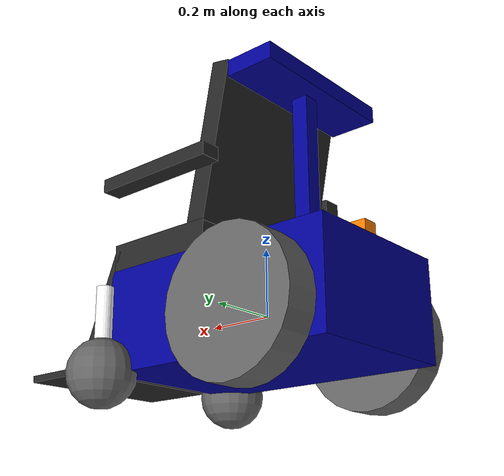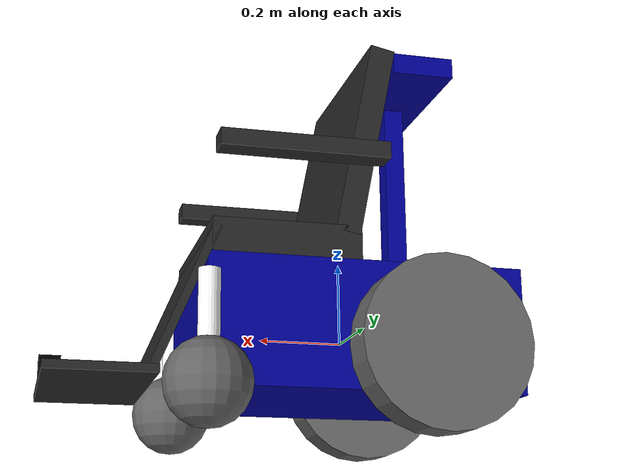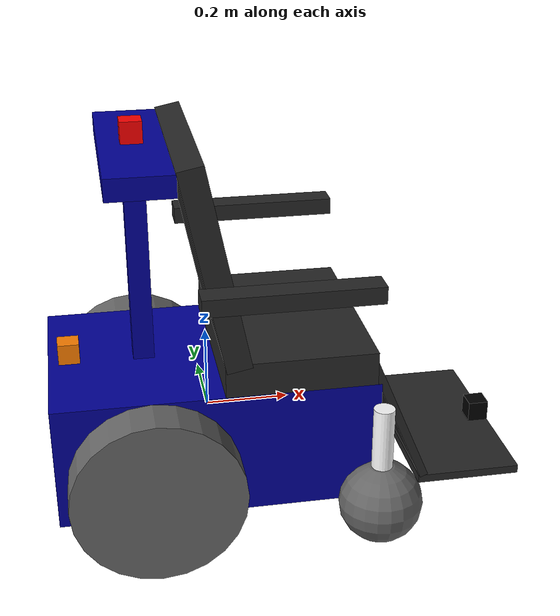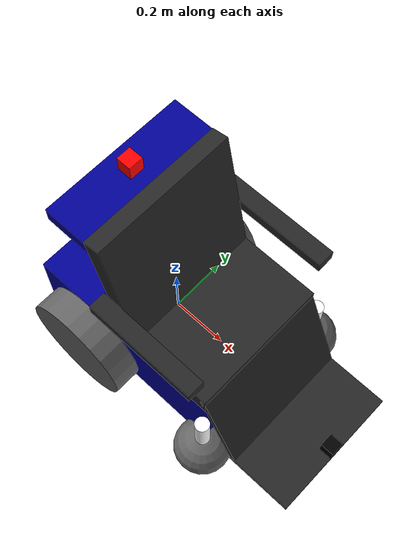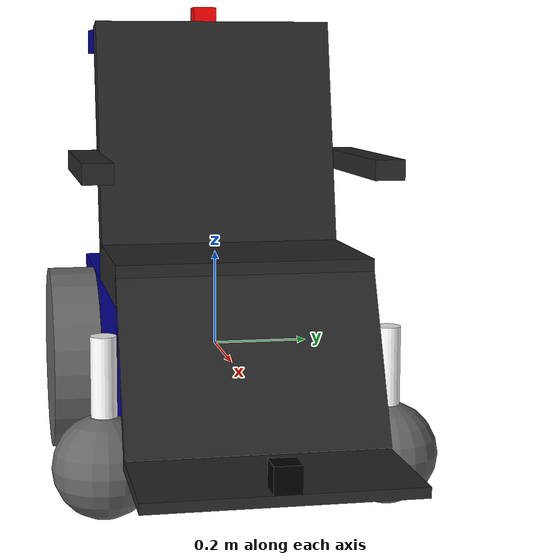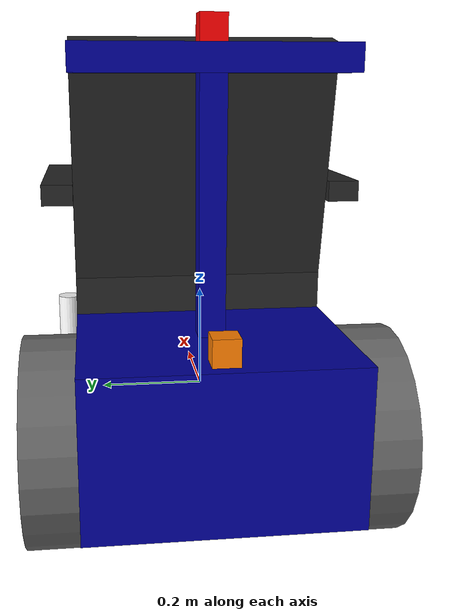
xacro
<?xml version="1.0"?>
<robot name="wchair" xmlns:xacro="http://www.ros.org/wiki/xacro">
<xacro:include filename="$(find wheelchair_description)/urdf/w.urdf.xacro" />
<xacro:include filename="$(find wheelchair_description)/urdf/t.urdf.xacro" />
<xacro:include filename="$(find wheelchair_description)/urdf/c.urdf.xacro" />

	<!-- PROPERTY LIST -->
	<property name="M_PI" value="3.1415926535897931" />
	<property name="base_x" value="0.75" />
	<property name="base_y" value="0.5" />
	<property name="base_z" value="0.30" />
	<property name="base_mass" value="5.0"/>

	<property name="hokuyo_size" value="0.05"/>
	<property name="imu_size" value="0.05"/>
  	<property name="camera_size" value="0.05" />

	<property name="rate_sensor" value="50.0"/>
	<property name="d_grey" value="0.15"/>

	<!-- Base Link -->
	<link name="base_link">
		<visual>
			<origin xyz="0 0 0" rpy="0 0 0" />
			<geometry><box size="${base_x} ${base_y} ${base_z}"/></geometry>
			<material name="blue"><color rgba="0 0 0.6 1"/></material>
		</visual>
		<!-- Base collision -->
		<collision>
			<origin xyz="0 0 0" rpy="0 0 0" />
			<geometry><box size="${base_x} ${base_y} ${base_z}"/></geometry>
		</collision>
		<inertial>
			<mass value="${base_mass}"/>
			<inertia ixx="0.13" ixy="0.0" ixz="0.0" iyx="0.0" iyy="0.21" iyz="0.0" izx="0.0" izy="0.0" izz="0.13"/>
		</inertial>
	</link>
	<gazebo reference="base_link">
		<material>Gazebo/SkyBlue</material>
	</gazebo>
<!-- Per far funzionare il MOVE_BASE abbiamo invertito le ruote destra e sinistra, a quanto pare l'asse Y e orientato in modo opposto rispetto a come pensavamo -->
	<!-- Top -->
	<top lr="left" parent="base_link" translateX="0.375" translateY="-0.275" translateZ="0" />
	<top lr="right" parent="base_link" translateX="0.375" translateY="0.275" translateZ="0" />
	<!-- Caster -->
	<caster lr="left" parent="base_link" translateX="0.375" translateY="-0.275" translateZ="-0.15" />
	<caster lr="right" parent="base_link" translateX="0.375" translateY="0.275" translateZ="-0.15" />
	<!-- Wheels-->
	<wheel lr="left" parent="base_link" translateX="-0.15" translateY="-0.3" translateZ="-0.05" flipY="1" />
	<wheel lr="right" parent="base_link" translateX="-0.15" translateY="0.3" translateZ="-0.05" flipY="1" />
	<!-- PEDANE -->
	<link name="pedana1">
		<visual>
			<origin xyz="0 0 0" rpy="0 0 0" />
			<geometry><box size="0.02 0.5 0.35" /></geometry>
			<material name="dark_grey"><color rgba="${d_grey} ${d_grey} ${d_grey} 1"/></material>
		</visual>
		<collision>
			<origin xyz="0 0 0" rpy="0 0 0" />
			<geometry><box size="0.02 0.5 0.35" /></geometry>
		</collision>
	</link>
	<joint name="joint_pedana1" type="fixed">
		<parent link="base_link"/>
		<child link="pedana1"/>
		<origin xyz="0.42 0 0.05" rpy="0 -0.40 0" />
	</joint>
	<gazebo reference="pedana1">
  		<material>Gazebo/DarkGrey</material>
  	</gazebo>
	<!-- PEDANA 2 -->
	<link name="pedana2">
		<visual>
			<origin xyz="0 0 0" rpy="0 0 0" />
			<geometry><box size="0.25 0.5 0.02" /></geometry>
			<material name="dark_grey"><color rgba="${d_grey} ${d_grey} ${d_grey} 1"/></material>
		</visual>
		<collision>
			<origin xyz="0 0 0" rpy="0 0 0" />
			<geometry><box size="0.25 0.5 0.02"  /></geometry>
		</collision>
	</link>
	<joint name="joint_pedana2" type="fixed">
		<parent link="base_link"/>
		<child link="pedana2"/>
		<origin xyz="0.60 0 -0.12" rpy="0 0 0" />
	</joint>
	<gazebo reference="pedana2">
  		<material>Gazebo/DarkGrey</material>
  	</gazebo>
	<!-- SEDILE -->
	<link name="sedile">
		<visual>
			<origin xyz="0 0 0" rpy="0 0 0" />
			<geometry><box size="0.35 0.5 0.08" /></geometry>
			<material name="dark_grey"><color rgba="${d_grey} ${d_grey} ${d_grey} 1"/></material>
		</visual>
		<collision>
			<origin xyz="0 0 0" rpy="0 0 0" />
			<geometry><box size="0.35 0.5 0.08" /></geometry>
		</collision>
	</link>
	<joint name="joint_sedile" type="fixed">
		<parent link="base_link"/>
		<child link="sedile"/>
		<origin xyz="0.19 0 0.19" rpy="0 0 0" />
	</joint>
	<gazebo reference="sedile">
  		<material>Gazebo/DarkGrey</material>
  	</gazebo>
	<!-- SCHIENALE -->
	<link name="schienale">
		<visual>
			<origin xyz="0 0 0" rpy="0 0 0" />
			<geometry><box size="0.06 0.5 0.48" /></geometry>
			<material name="dark_grey"><color rgba="${d_grey} ${d_grey} ${d_grey} 1"/></material>
		</visual>
		<collision>
			<origin xyz="0 0 0" rpy="0 0 0" />
			<geometry><box size="0.06 0.5 0.48" /></geometry>
		</collision>
	</link>
	<joint name="joint_schienale" type="fixed">
		<parent link="base_link"/>
		<child link="schienale"/>
		<origin xyz="0 0 0.45" rpy="0 -0.2 0" />
	</joint>
	<gazebo reference="schienale">
  		<material>Gazebo/DarkGrey</material>
  	</gazebo>
	<!-- BRACCIOLO DX-->
	<link name="bracciolo_dx">
		<visual>
			<origin xyz="0 0 0" rpy="0 0 0" />
			<geometry><box size="0.40 0.06 0.04" /></geometry>
			<material name="dark_grey"><color rgba="${d_grey} ${d_grey} ${d_grey} 1"/></material>
		</visual>
		<collision>
			<origin xyz="0 0 0" rpy="0 0 0" />
			<geometry><box size="0.40 0.06 0.04" /></geometry>
		</collision>
	</link>
	<joint name="joint_bracciolo_dx" type="fixed">
		<parent link="base_link"/>
		<child link="bracciolo_dx"/>
		<origin xyz="0.16 -0.28 0.4" rpy="0 0 0" />
	</joint>
	<gazebo reference="bracciolo_dx">
  		<material>Gazebo/DarkGrey</material>
  	</gazebo>
	<!-- BRACCIOLO SX-->
	<link name="bracciolo_sx">
		<visual>
			<origin xyz="0 0 0" rpy="0 0 0" />
			<geometry><box size="0.40 0.06 0.04" /></geometry>
			<material name="dark_grey"><color rgba="${d_grey} ${d_grey} ${d_grey} 1"/></material>
		</visual>
		<collision>
			<origin xyz="0 0 0" rpy="0 0 0" />
			<geometry><box size="0.40 0.06 0.04" /></geometry>
		</collision>
	</link>
	<joint name="joint_bracciolo_sx" type="fixed">
		<parent link="base_link"/>
		<child link="bracciolo_sx"/>
		<origin xyz="0.16 0.28 0.4" rpy="0 0 0" />
	</joint>
	<gazebo reference="bracciolo_sx">
  		<material>Gazebo/DarkGrey</material>
  	</gazebo>
	<!-- SENSOR hokuyo -->
	<link name="hokuyo_link">
		<visual>
			<origin xyz="0 0 0" rpy="0 0 0" />
			<geometry><box size="${hokuyo_size} ${hokuyo_size} ${hokuyo_size}"/></geometry>
			<material name="black"><color rgba="0 0 0 1"/></material>
		</visual>
		<collision>
			<origin xyz="0 0 0" rpy="0 0 0" />
			<geometry><box size="${hokuyo_size} ${hokuyo_size} ${hokuyo_size}"/></geometry>
		</collision>
	</link>
	<joint name="hokuyo_joint" type="fixed">
		<origin xyz="0.7 0 -0.085" rpy="0 0 0" />
		<parent link="base_link"/>
		<child link="hokuyo_link" />
	</joint>
	<gazebo reference="hokuyo_link">
		<material>Gazebo/Black</material>
		<sensor type="ray" name="head_hokuyo_sensor">
			<pose>${hokuyo_size/2} 0 0 0 0 0</pose>
			<visualize>false</visualize>
			<update_rate>${rate_sensor}</update_rate>
			<ray>
				<scan>
					<horizontal>
						<samples>682</samples><!-- 240 gradi formati da step di circa 0.3515625 -->
						<resolution>1</resolution>
						<min_angle>-2.0944</min_angle> <!-- -120 gradi-->
						<max_angle>2.0944</max_angle> <!-- +120 gradi-->
					</horizontal>
				</scan>
				<range>
					<min>0.1</min>
					<max>4.0</max>
					<resolution>0.001</resolution>
				</range>
			</ray>
			<plugin name="gazebo_ros_head_hokuyo_controller" filename="libgazebo_ros_laser.so">
				<topicName>/scan</topicName>
				<frameName>hokuyo_link</frameName>
			</plugin>
		</sensor>
	</gazebo>
	<!-- SENSOR imu -->
	<link name="imu_link">
  		<visual>
    		<origin rpy="0 0 0" xyz="0 0 0"/>
      		<geometry><box size="${imu_size} ${imu_size} ${imu_size}"/></geometry>
			<material name="orange"><color rgba="1 0.5 0 1"/></material>
  		</visual>
		<collision>
			<origin xyz="0 0 0" rpy="0 0 0" />
			<geometry><box size="${imu_size} ${imu_size} ${imu_size}"/></geometry>
		</collision>
	</link>
	<joint name="imu_joint" type="fixed">
    	<origin xyz="${-base_x/2 + imu_size} 0 ${base_z/2+imu_size/2}" rpy="0 0 0"/>
    	<parent link="base_link"/>
    	<child link="imu_link"/>
  	</joint>
	<gazebo reference="imu_link">
		<material>Gazebo/Orange</material>
		<sensor type="imu" name="imu_sensor">
			<imu>
				  <angular_velocity>
				    <x>
				      <noise type="gaussian">
				        <mean>0.0</mean>
				        <stddev>2e-4</stddev>
				        <bias_mean>0.0000075</bias_mean>
				        <bias_stddev>0.0000008</bias_stddev>
				      </noise>
				    </x>
				    <y>
				      <noise type="gaussian">
				        <mean>0.0</mean>
				        <stddev>2e-4</stddev>
				        <bias_mean>0.0000075</bias_mean>
				        <bias_stddev>0.0000008</bias_stddev>
				      </noise>
				    </y>
				    <z>
				      <noise type="gaussian">
				        <mean>0.0</mean>
				        <stddev>2e-4</stddev>
				        <bias_mean>0.0000075</bias_mean>
				        <bias_stddev>0.0000008</bias_stddev>
				      </noise>
				    </z>
				  </angular_velocity>
				  <linear_acceleration>
				    <x>
				      <noise type="gaussian">
				        <mean>0.0</mean>
				        <stddev>1.7e-2</stddev>
				        <bias_mean>0.1</bias_mean>
				        <bias_stddev>0.001</bias_stddev>
				      </noise>
				    </x>
				    <y>
				      <noise type="gaussian">
				        <mean>0.0</mean>
				        <stddev>1.7e-2</stddev>
				        <bias_mean>0.1</bias_mean>
				        <bias_stddev>0.001</bias_stddev>
				      </noise>
				    </y>
				    <z>
				      <noise type="gaussian">
				        <mean>0.0</mean>
				        <stddev>1.7e-2</stddev>
				        <bias_mean>0.1</bias_mean>
				        <bias_stddev>0.001</bias_stddev>
				      </noise>
				    </z>
				  </linear_acceleration>
			</imu>
			<pose>0 0 0 0 0 0</pose>
			<update_rate>${rate_sensor}</update_rate>
    		<plugin name="gazebo_ros_imu_controller" filename="libgazebo_ros_imu_sensor.so">
    	  		<topicName>/imu</topicName>
    	  		<frameName>imu_link</frameName>
    	  		<alwaysOn>true</alwaysOn>
    	  		<bodyName>base_link</bodyName>
    	  		<gaussianNoise>0.5</gaussianNoise>
    	  		<serviceName>imu/calibrate</serviceName>
    	  		<rpyOffset>0 0 0</rpyOffset>
				<accelDrift>0.5 0.5 0.5</accelDrift>
				<accelGaussianNoise>0.35 0.35 0.35</accelGaussianNoise>
				<rateDrift>0.1 0.1 0.1</rateDrift>
				<rateGaussianNoise>0.05 0.05 0.05</rateGaussianNoise>
    		</plugin>
    	</sensor>
  	</gazebo>
   <!--SUPPORTO-->
	<link name="supporto1">
		<visual>
			<origin xyz="0 0 0" rpy="0 0 0" />
			<geometry><box size="${camera_size} ${camera_size} 0.625" /></geometry>
			<material name="blue"><color rgba="0 0 0.6 1"/></material>
		</visual>
		<collision>
			<origin xyz="0 0 0" rpy="0 0 0" />
			<geometry><box size="${camera_size} ${camera_size} 0.625" /></geometry>
		</collision>
	</link>
	<joint name="joint_supporto1" type="fixed">
		<parent link="base_link"/>
		<child link="supporto1"/>
		<origin xyz="-0.15 0 0.3125" rpy="0 0 0" />
	</joint>
	<gazebo reference="supporto1">
  		<material>Gazebo/SkyBlue</material>
  	</gazebo>

	<link name="supporto2">
		<visual>
			<origin xyz="0 0 0" rpy="0 0 0" />
			<geometry><box size="0.15 0.5 ${camera_size}" /></geometry>
			<material name="blue"><color rgba="0 0 0.6 1"/></material>
		</visual>
		<collision>
			<origin xyz="0 0 0" rpy="0 0 0" />
			<geometry><box size="0.15 0.5 ${camera_size}" /></geometry>
		</collision>
	</link>
	<joint name="joint_supporto2" type="fixed">
		<parent link="base_link"/>
		<child link="supporto2"/>
		<origin xyz="-0.15 0 ${0.6+camera_size}" rpy="0 0 0" />
	</joint>
	<gazebo reference="supporto2">
  		<material>Gazebo/SkyBlue</material>
  	</gazebo>
	<!-- SENSOR camera -->
  <link name="camera_link">
    <visual>
      <origin xyz="0 0 0" rpy="0 0 0"/>
      <geometry><box size="${camera_size} ${camera_size} ${camera_size}"/></geometry>
	  <material name="red"><color rgba="1 0 0 1"/></material>
    </visual>
	<collision>
		<origin xyz="0 0 0" rpy="0 0 0" />
		<geometry><box size="${camera_size} ${camera_size} ${camera_size}"/></geometry>
	</collision>
    <inertial>
      <mass value="1e-5" />
      <origin xyz="0 0 0" rpy="0 0 0"/>
      <inertia ixx="1e-6" ixy="0" ixz="0" iyy="1e-6" iyz="0" izz="1e-6" />
    </inertial>
  </link>
  <joint name="camera_joint" type="fixed">
    <axis xyz="0 1 0" />
    <origin xyz="-0.15 0 ${0.6+camera_size*2}" rpy="0 -1.5708 0" /> <!-- pitch a -1.5708 per puntare in alto -->
    <parent link="base_link"/>
    <child link="camera_link"/>
  </joint>

  <gazebo reference="camera_link">
	<material>Gazebo/Red</material>
    <sensor type="camera" name="camera_sensor">
      <update_rate>${rate_sensor}</update_rate>
      <camera>
        <horizontal_fov>1.047197551</horizontal_fov> <!--60 gradi-->
        <image>
          <width>640</width>
          <height>480</height>
          <format>R8G8B8</format>
        </image>
        <clip>
          <near>0.002</near>
          <far>300</far>
        </clip>
        <noise>
          <type>gaussian</type>
          <mean>0.0</mean>
          <stddev>0.0</stddev>
        </noise>
      </camera>
      <plugin name="camera_controller" filename="libgazebo_ros_camera.so">
        <alwaysOn>true</alwaysOn>
		<updateRate>20.0</updateRate>
		<cameraName>wchair/camera_sensor</cameraName>
        <imageTopicName>image_raw</imageTopicName>
        <cameraInfoTopicName>camera_info</cameraInfoTopicName>
        <frameName>camera_link</frameName>
        <hackBaseline>0.0</hackBaseline>
        <distortionK1>0.0</distortionK1>
        <distortionK2>0.0</distortionK2>
        <distortionK3>0.0</distortionK3>
        <distortionT1>0.0</distortionT1>
        <distortionT2>0.0</distortionT2>
        <Cx>319.729675</Cx>
        <Cy>238.722791</Cy>
        <focalLength>554.668244</focalLength> <!--matematicamente 554.256258422-->
      </plugin>
    </sensor>
  </gazebo>

	<!-- Differential drive controller  -->
	<!-- Per muove il robot in Gazebo dobbiamo aggiungere questo plugin "libgazebo_ros_diff_drive.so" -->
	<gazebo>
		<plugin name="differential_drive_controller_caster" filename="libgazebo_ros_diff_drive.so">
			<legacyMode>false</legacyMode>
			<rosDebugLevel>Debug</rosDebugLevel>
			<publishWheelTF>true</publishWheelTF>
			<robotNamespace>/</robotNamespace>
			<publishTf>0</publishTf>
			<broadcastTF>0</broadcastTF>
			<alwaysOn>true</alwaysOn>
			<publishWheelJointState>false</publishWheelJointState>
			<updateRate>${rate_sensor}</updateRate>
			<leftJoint>left_caster_joint</leftJoint>
			<rightJoint>right_caster_joint</rightJoint>
			<wheelSeparation>${base_y}</wheelSeparation>
			<wheelDiameter>0.2</wheelDiameter>
			<wheelTorque>30</wheelTorque>
			<wheelAcceleration>1.8</wheelAcceleration>
			<commandTopic>cmd_vel</commandTopic>
			<robotBaseFrame>base_link</robotBaseFrame>
			<odometryFrame>odom</odometryFrame>
			<odometryTopic>odom</odometryTopic>
		</plugin>
		<plugin name="differential_drive_controller_wheel" filename="libgazebo_ros_diff_drive.so">
			<legacyMode>false</legacyMode>
			<rosDebugLevel>Debug</rosDebugLevel>
			<publishWheelTF>true</publishWheelTF>
			<robotNamespace>/</robotNamespace>
			<publishTf>0</publishTf>
			<broadcastTF>0</broadcastTF>
			<alwaysOn>true</alwaysOn>
			<publishWheelJointState>true</publishWheelJointState>
			<updateRate>${rate_sensor}</updateRate>
			<leftJoint>left_wheel_joint</leftJoint>
			<rightJoint>right_wheel_joint</rightJoint>
			<wheelSeparation>${base_y}</wheelSeparation>
			<wheelDiameter>${2*wheel_radius}</wheelDiameter>
			<wheelTorque>30</wheelTorque>
			<wheelAcceleration>1.8</wheelAcceleration>
			<commandTopic>cmd_vel</commandTopic>
			<robotBaseFrame>base_link</robotBaseFrame>
			<odometryFrame>odom</odometryFrame>
			<odometryTopic>odom</odometryTopic>
		</plugin>
		<plugin name="differential_drive_controller_top" filename="libgazebo_ros_diff_drive.so">
			<legacyMode>false</legacyMode>
			<rosDebugLevel>Debug</rosDebugLevel>
			<publishWheelTF>true</publishWheelTF>
			<robotNamespace>/</robotNamespace>
			<publishTf>0</publishTf>
			<broadcastTF>0</broadcastTF>
			<alwaysOn>true</alwaysOn>
			<publishWheelJointState>false</publishWheelJointState>
			<updateRate>${rate_sensor}</updateRate>
			<leftJoint>left_top_joint</leftJoint>
			<rightJoint>right_top_joint</rightJoint>
			<wheelSeparation>${base_y}</wheelSeparation>
			<wheelDiameter>0.05</wheelDiameter>
			<wheelTorque>30</wheelTorque>
			<wheelAcceleration>1.8</wheelAcceleration>
			<commandTopic>cmd_vel</commandTopic>
			<robotBaseFrame>base_link</robotBaseFrame>
			<odometryFrame>odom</odometryFrame>
			<odometryTopic>odom</odometryTopic>
		</plugin>
	</gazebo>
</robot>

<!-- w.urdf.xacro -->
<robot name="wheel"  xmlns:xacro="http://www.ros.org/wiki/xacro">

	<!-- Wheels -->
	<property name="wheel_radius" value="0.2" />
	<property name="wheel_height" value="0.1" />
	<property name="wheel_mass" value="1" /> <!-- in kg-->

	<macro name="cylinder_inertia" params="m r h">
		<inertia  ixx="${m*(3*r*r+h*h)/12}" ixy = "0" ixz = "0" iyy="${m*(3*r*r+h*h)/12}" iyz = "0" izz="${m*r*r/2}" />
	</macro>

	<xacro:macro name="wheel" params="lr parent translateX translateY translateZ flipY"> <!-- lr: left, right -->
		<link name="${lr}_wheel">
		<visual>
			<origin xyz="0 0 0" rpy="${flipY*M_PI/2} 0  0 " />
			<geometry>
				<cylinder length="${wheel_height}" radius="${wheel_radius}" />
			</geometry>
			<material name="grey"><color rgba="0.4 0.4 0.4 1"/></material>
		</visual>
		<collision>
			<origin xyz="0 0 0" rpy="${flipY*M_PI/2} 0 0" />
			<geometry><cylinder length="${wheel_height}" radius="${wheel_radius}" /></geometry>
		</collision>
		<inertial>
			<mass value="${wheel_mass}" />
			<origin xyz="0 0 0" />
			<cylinder_inertia  m="${wheel_mass}" r="${wheel_radius}" h="${wheel_height}" />
		</inertial>
	</link>

	<gazebo reference="${lr}_wheel">
		<material>Gazebo/Grey</material>
	</gazebo>
	<!-- Il giunto puo essere solo fisso o continuo con il tag della trasmissione -->
	<joint name="${lr}_wheel_joint" type="continuous">
		<parent link="${parent}"/>
		<child link="${lr}_wheel"/>
		<origin xyz="${translateX} ${translateY} ${translateZ}" rpy="0 0 0" />
		<axis xyz="0 1 0" />
		<limit effort="100.0" lower="0.0" upper="0.0" velocity="100"/>
		<joint_properties damping="0.0" friction="0.0"/>
	</joint>

	<!-- Transmission is important to link the joints and the controller -->
	<transmission name="${lr}_wheel_joint_trans">
		<type>transmission_interface/SimpleTransmission</type>
		<joint name="${lr}_wheel_joint"/>
		<actuator name="${lr}_wheel_joint_motor">
			<hardwareInterface>EffortJointInterface</hardwareInterface>
			<mechanicalReduction>1</mechanicalReduction>
		</actuator>
    </transmission>

    </xacro:macro>
</robot>

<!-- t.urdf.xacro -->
<robot name="top"  xmlns:xacro="http://www.ros.org/wiki/xacro">
	<!-- tops -->
	<property name="top_radius" value="0.025" />
	<property name="top_height" value="0.2" />
	<property name="top_mass" value="1" /> <!-- in kg-->

	<macro name="cylinder_inertia" params="m r h">
		<inertia  ixx="${m*(3*r*r+h*h)/12}" ixy = "0" ixz = "0" iyy="${m*(3*r*r+h*h)/12}" iyz = "0" izz="${m*r*r/2}" />
	</macro>

	<xacro:macro name="top" params="lr parent translateX translateY translateZ"> <!-- lr: left, right -->
		<link name="${lr}_top">
		<visual>
			<origin xyz="0 0 0" rpy="0 0  0 " />
			<geometry>
				<cylinder length="${top_height}" radius="${top_radius}" />
			</geometry>
			<material name="white"><color rgba="1 1 1 1"/></material>
		</visual>
		<collision>
			<origin xyz="0 0 0" rpy="0 0 0" />
			<geometry><cylinder length="${top_height}" radius="${top_radius}" /></geometry>
		</collision>
		<inertial>
			<mass value="${top_mass}" />
			<origin xyz="0 0 0" />
			<cylinder_inertia  m="${top_mass}" r="${top_radius}" h="${top_height}" />
		</inertial>
	</link>

	<gazebo reference="${lr}_top">
		<material>Gazebo/White</material>
	</gazebo>
	<!-- Il giunto puo essere solo fisso o continuo con il tag della trasmissione -->
	<joint name="${lr}_top_joint" type="continuous">
		<parent link="${parent}"/>
		<child link="${lr}_top"/>
		<origin xyz="${translateX} ${translateY} ${translateZ}" rpy="0 0 0" />
		<axis xyz="0 0 1" />
		<limit effort="100.0" lower="0.0" upper="0.0" velocity="100"/>
		<joint_properties damping="0.0" friction="0.0"/>
	</joint>

	<!-- Transmission is important to link the joints and the controller -->
	<transmission name="${lr}_top_joint_trans">
		<type>transmission_interface/SimpleTransmission</type>
		<joint name="${lr}_top_joint"/>
		<actuator name="${lr}_top_joint_motor">
			<hardwareInterface>EffortJointInterface</hardwareInterface>
			<mechanicalReduction>1</mechanicalReduction>
		</actuator>
    </transmission>

    </xacro:macro>
</robot>

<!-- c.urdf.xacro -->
<robot name="caster"  xmlns:xacro="http://www.ros.org/wiki/xacro">

	<!-- Caster -->
	<property name="caster_radius" value="0.1" />
	<property name="caster_mass" value="0.5" /> <!-- in kg-->

	<xacro:macro name="caster" params="lr parent translateX translateY translateZ"> <!-- lr: left, right -->
		<link name="${lr}_caster">
		<visual>
			<origin xyz="0 0 0" rpy="0 0  0 " />
			<geometry>
				<sphere radius="${caster_radius}" />
			</geometry>
			<material name="grey"><color rgba="0.4 0.4 0.4 1"/></material>
		</visual>
		<collision>
			<origin xyz="0 0 0" rpy="0 0 0" />
			<geometry><sphere radius="${caster_radius}" /></geometry>
		</collision>
		<inertial>
			<mass value="${caster_mass}"/>
			<inertia ixx="0.0001" ixy="0.0" ixz="0.0" iyy="0.0001" iyz="0.0" izz="0.0001"/>
		</inertial>
	</link>

	<gazebo reference="${lr}_caster">
		<material>Gazebo/Grey</material>
	</gazebo>

	<joint name="${lr}_caster_joint" type="continuous">
		<parent link="${parent}"/>
		<child link="${lr}_caster"/>
		<origin xyz="${translateX} ${translateY} ${translateZ}" rpy="0 0 0" />
		<axis xyz="0 1 0" />
	</joint>

	<!-- Transmission is important to link the joints and the controller -->
	<transmission name="${lr}_caster_joint_trans">
		<type>transmission_interface/SimpleTransmission</type>
		<joint name="${lr}_caster_joint"/>
		<actuator name="${lr}_caster_joint_motor">
			<hardwareInterface>EffortJointInterface</hardwareInterface>
			<mechanicalReduction>1</mechanicalReduction>
		</actuator>
    </transmission>

    </xacro:macro>
</robot>
